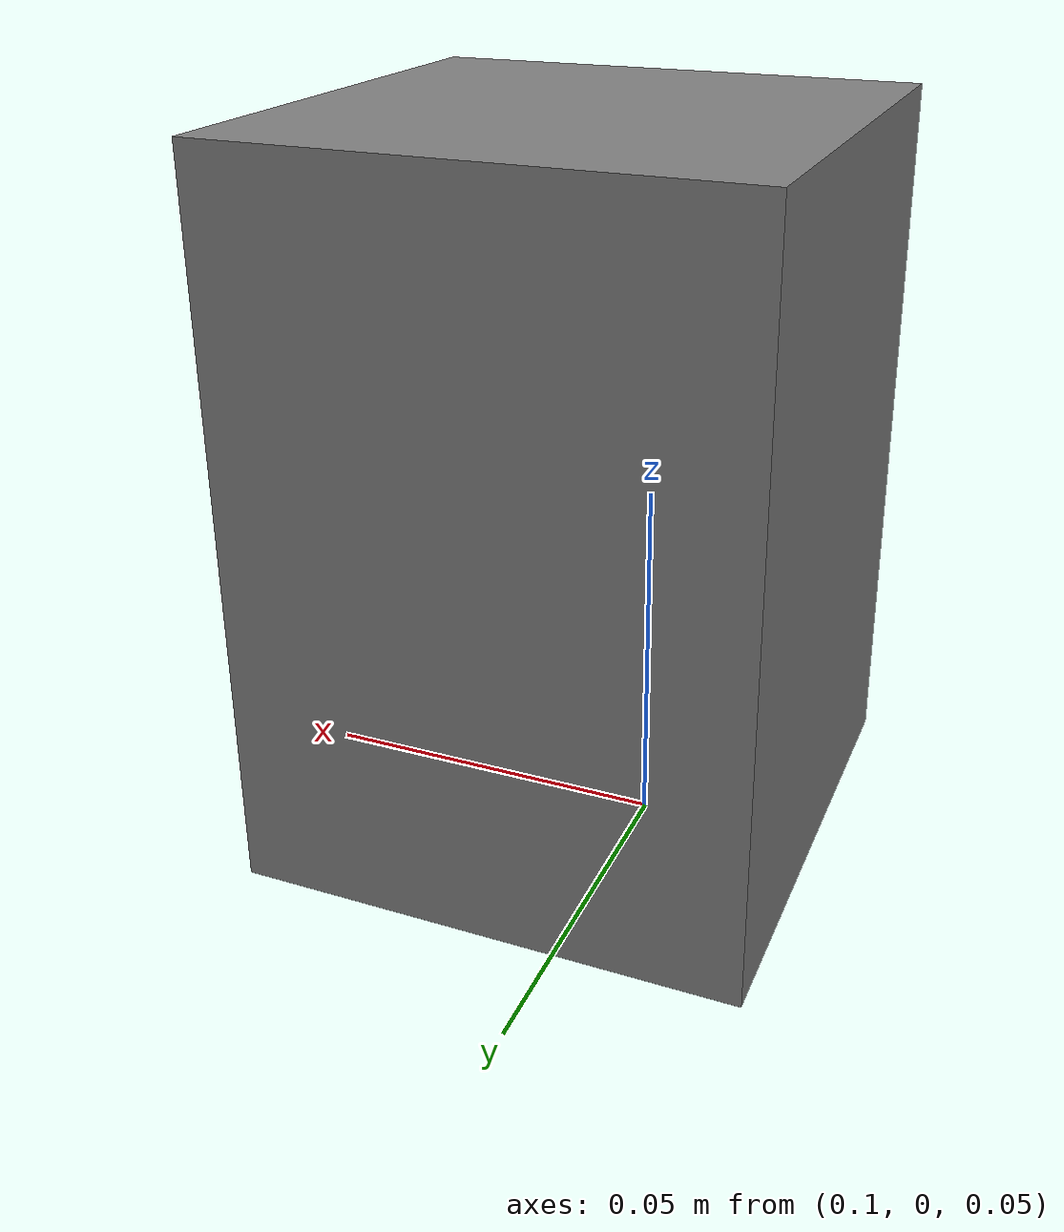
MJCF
<mujoco>
  <default>
    <default class="cube">
      <geom friction=".3 0.05" conaffinity="2" condim="3"/>
    </default>
  </default>

  <asset>
    <texture name="cube" type="cube" fileup="reorientation_cube_textures/fileup.png"
      fileback="reorientation_cube_textures/fileback.png" filedown="reorientation_cube_textures/filedown.png"
      filefront="reorientation_cube_textures/filefront.png" fileleft="reorientation_cube_textures/fileleft.png"
      fileright="reorientation_cube_textures/fileright.png"/>
    <material name="cube" texture="cube"/>
    <texture name="graycube" type="cube" fileup="reorientation_cube_textures/grayup.png"
      fileback="reorientation_cube_textures/grayback.png" filedown="reorientation_cube_textures/graydown.png"
      filefront="reorientation_cube_textures/grayfront.png" fileleft="reorientation_cube_textures/grayleft.png"
      fileright="reorientation_cube_textures/grayright.png"/>
    <material name="graycube" texture="graycube"/>
    <texture name="dexcube" type="2d" file="reorientation_cube_textures/dex_cube.png"/>
    <material name="dexcube" texture="dexcube"/>
    <mesh name="cube_mesh" file="meshes/dex_cube.obj" scale="0.050 0.035 0.035"/>
  </asset>

  <worldbody>
    <body name="cube" pos="0.11 0.0 0.1" quat="1 0 0 0" childclass="cube">
      <freejoint name="cube_freejoint"/>
      <geom type="box" size=".035 .035 .050" contype="0" conaffinity="0" group="2"/>
      <geom name="cube" type="box" size=".035 .035 .050" mass=".108" group="3"/>
      <site name="cube_center" pos="0 0 0" group="4"/>
    </body>
  </worldbody>
</mujoco>
